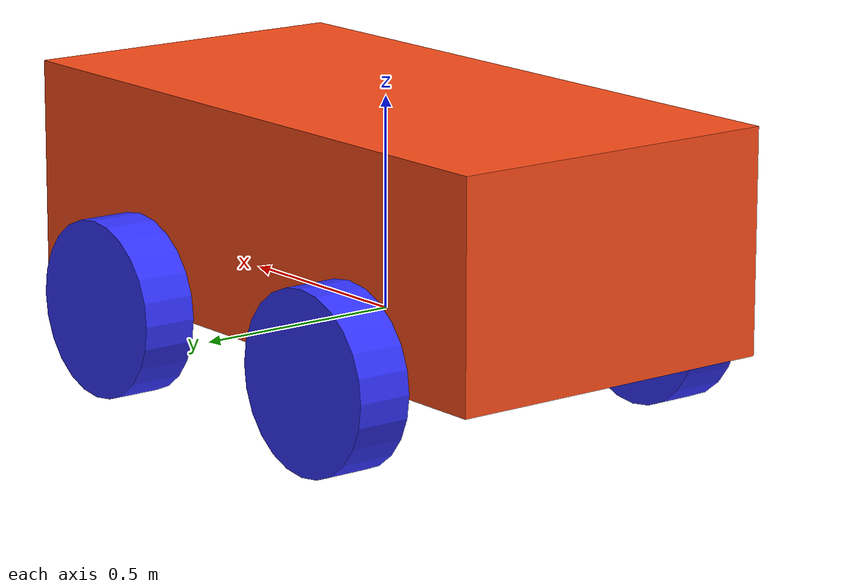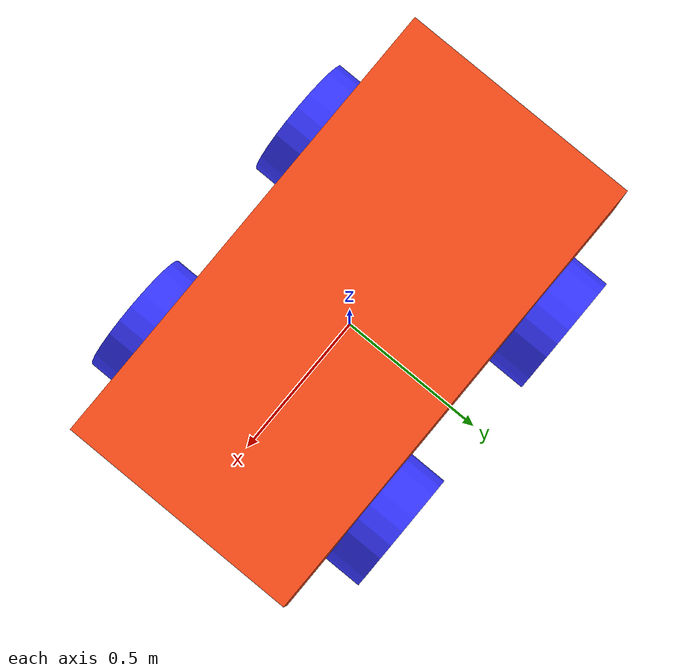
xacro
<?xml version="1.0"?>
<robot xmlns:xacro="http://www.ros.org/wiki/xacro" >

    <xacro:include filename="inertial_macros.xacro"/>
    <xacro:property name="chassis_length" value="1.6"/>
    <xacro:property name="chassis_width" value="0.82"/>
    <xacro:property name="chassis_height" value="0.52"/>
    <xacro:property name="chassis_mass" value="1.0"/>
    <xacro:property name="wheel_radius" value="0.210"/>
    <xacro:property name="wheel_thickness" value="0.130"/>
    <xacro:property name="wheel_mass" value="0.05"/>
    <xacro:property name="wheel_offset_x" value="${chassis_length / 2}"/> <!-- Half of the new chassis length -->
    <xacro:property name="wheel_offset_y" value="${chassis_width / 2 + wheel_thickness / 2 }"/> <!-- Half of the new chassis width -->
    <xacro:property name="front_wheel_offset_x" value="${chassis_length / 4}"/> <!-- Half of the front chassis length -->
    <xacro:property name="rear_wheel_offset_x" value="${-chassis_length / 4}"/> <!-- Half of the rear chassis length -->

    <xacro:property name="wheel_offset_z" value="0.01"/>

    <material name="white">
        <color rgba="1 1 1 1" />
    </material>

    <material name="orange">
        <color rgba="1 0.3 0.1 1"/>
    </material>

    <material name="blue">
        <color rgba="0.2 0.2 1 1"/>
    </material>

    <material name="black">
        <color rgba="0 0 0 1"/>
    </material>

    <material name="red">
        <color rgba="1 0 0 1"/>
    </material>

    <!-- BASE LINK -->

    <link name="base_link">

    </link>

    <!-- BASE_FOOTPRINT LINK -->

    <joint name="base_footprint_joint" type="fixed">
        <parent link="base_link"/>
        <child link="base_footprint"/>
        <origin xyz="0 0 0" rpy="0 0 0"/>
    </joint>

    <link name="base_footprint">
    </link>

    <!-- CHASSIS LINK -->

    <joint name="chassis_joint" type="fixed">
        <parent link="base_link"/>
        <child link="chassis"/>
        <origin xyz="${-wheel_offset_x} 0 ${-wheel_offset_z}"/>
    </joint>

    <link name="chassis">
        <visual>
            <origin xyz="${chassis_length/2} 0 ${chassis_height/2}"/>
            <geometry>
                <box size="${chassis_length} ${chassis_width} ${chassis_height}"/>
            </geometry>
            <material name="orange"/>
        </visual>
        <collision>
            <origin xyz="${chassis_length/2} 0 ${chassis_height/2}"/>
            <geometry>
                <box size="${chassis_length} ${chassis_width} ${chassis_height}"/>
            </geometry>
        </collision>
        <xacro:inertial_box mass="0.5" x="${chassis_length}" y="${chassis_width}" z="${chassis_height}">
            <origin xyz="${chassis_length/2} 0 ${chassis_height/2}" rpy="0 0 0"/>
        </xacro:inertial_box>
    </link>

    <gazebo reference="chassis">
        <material>Gazebo/Orange</material>
    </gazebo>

    <!-- LEFT WHEEL LINK -->

    <joint name="front_left_wheel_joint" type="continuous">
        <parent link="base_link"/>
        <child link="front_left_wheel"/>
        <origin xyz="${front_wheel_offset_x} ${wheel_offset_y} 0" rpy="-${pi/2} 0 0" />
        <axis xyz="0 0 1"/>
    </joint>

    <link name="front_left_wheel">
        <visual>
            <geometry>
                <cylinder radius="${wheel_radius}" length="${wheel_thickness}"/>
            </geometry>
            <material name="blue"/>
        </visual>
        <collision>
            <geometry>
                <sphere radius="${wheel_radius}"/>
            </geometry>
        </collision>
        <xacro:inertial_cylinder mass="${wheel_mass}" length="${wheel_thickness}" radius="${wheel_radius}">
            <origin xyz="0 0 0" rpy="0 0 0"/>
        </xacro:inertial_cylinder>
    </link>

    <gazebo reference="front_left_wheel">
        <material>Gazebo/Blue</material>
    </gazebo>

    <!-- RIGHT WHEEL LINK -->

    <joint name="front_right_wheel_joint" type="continuous">
        <parent link="base_link"/>
        <child link="front_right_wheel"/>
        <origin xyz="${front_wheel_offset_x} ${-wheel_offset_y} 0" rpy="${pi/2} 0 0" />
        <axis xyz="0 0 -1"/>
    </joint>

    <link name="front_right_wheel">
        <visual>
            <geometry>
                <cylinder radius="${wheel_radius}" length="${wheel_thickness}"/>
            </geometry>
            <material name="blue"/>
        </visual>
        <collision>
            <geometry>
                <sphere radius="${wheel_radius}"/>
            </geometry>
        </collision>
        <xacro:inertial_cylinder mass="${wheel_mass}" length="${wheel_thickness}" radius="${wheel_radius}">
            <origin xyz="0 0 0" rpy="0 0 0"/>
        </xacro:inertial_cylinder>
    </link>

    <gazebo reference="front_right_wheel">
        <material>Gazebo/Blue</material>
    </gazebo>

    <!-- REAR LEFT WHEEL LINK -->

    <joint name="rear_left_wheel_joint" type="continuous">
        <parent link="base_link"/>
        <child link="rear_left_wheel"/>
        <origin xyz="${rear_wheel_offset_x} ${wheel_offset_y} 0" rpy="-${pi/2} 0 0" />
        <axis xyz="0 0 1"/>
    </joint>

    <link name="rear_left_wheel">
        <visual>
            <geometry>
                <cylinder radius="${wheel_radius}" length="${wheel_thickness}"/>
            </geometry>
            <material name="blue"/>
        </visual>
        <collision>
            <geometry>
                <sphere radius="${wheel_radius}"/>

            </geometry>
        </collision>
        <xacro:inertial_cylinder mass="${wheel_mass}" length="${wheel_thickness}" radius="${wheel_radius}">
            <origin xyz="0 0 0" rpy="0 0 0"/>
        </xacro:inertial_cylinder>
    </link>

    <gazebo reference="rear_left_wheel">
        <material>Gazebo/Blue</material>
    </gazebo>

    <!-- REAR RIGHT WHEEL LINK -->

    <joint name="rear_right_wheel_joint" type="continuous">
        <parent link="base_link"/>
        <child link="rear_right_wheel"/>
        <origin xyz="${rear_wheel_offset_x} ${-wheel_offset_y} 0" rpy="-${pi/2} 0 0" />
        <axis xyz="0 0 1"/>
    </joint>

    <link name="rear_right_wheel">
        <visual>
            <geometry>
                <cylinder radius="${wheel_radius}" length="${wheel_thickness}"/>
            </geometry>
            <material name="blue"/>
        </visual>
        <collision>
            <geometry>
                <sphere radius="${wheel_radius}"/>
            </geometry>
        </collision>
        <xacro:inertial_cylinder mass="${wheel_mass}" length="${wheel_thickness}" radius="${wheel_radius}">
            <origin xyz="0 0 0" rpy="0 0 0"/>
        </xacro:inertial_cylinder>
    </link>

    <gazebo reference="rear_right_wheel">
        <material>Gazebo/Blue</material>
    </gazebo>

</robot>
